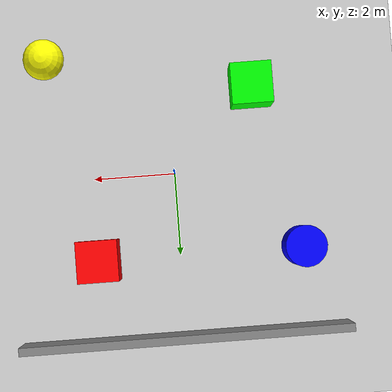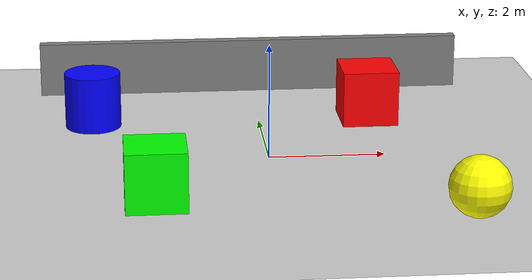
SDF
<?xml version="1.0"?>
<sdf version="1.6">
  <world name="simple_world">
    <!-- 添加光源 -->
    <include>
      <uri>model://sun</uri>
    </include>

    <!-- 添加地面 -->
    <include>
      <uri>model://ground_plane</uri>
    </include>

    <!-- 物理引擎设置 -->
    <physics type="ode">
      <max_step_size>0.001</max_step_size>
      <real_time_factor>1.0</real_time_factor>
      <real_time_update_rate>1000</real_time_update_rate>
    </physics>

    <!-- 添加一些障碍物 -->
    <model name="box1">
      <pose>2 2 0.5 0 0 0</pose>
      <link name="link">
        <collision name="collision">
          <geometry>
            <box>
              <size>1 1 1</size>
            </box>
          </geometry>
        </collision>
        <visual name="visual">
          <geometry>
            <box>
              <size>1 1 1</size>
            </box>
          </geometry>
          <material>
            <ambient>1 0 0 1</ambient>
            <diffuse>1 0 0 1</diffuse>
          </material>
        </visual>
      </link>
      <static>true</static>
    </model>

    <model name="box2">
      <pose>-2 -2 0.5 0 0 0</pose>
      <link name="link">
        <collision name="collision">
          <geometry>
            <box>
              <size>1 1 1</size>
            </box>
          </geometry>
        </collision>
        <visual name="visual">
          <geometry>
            <box>
              <size>1 1 1</size>
            </box>
          </geometry>
          <material>
            <ambient>0 1 0 1</ambient>
            <diffuse>0 1 0 1</diffuse>
          </material>
        </visual>
      </link>
      <static>true</static>
    </model>

    <model name="cylinder1">
      <pose>-3 2 0.5 0 0 0</pose>
      <link name="link">
        <collision name="collision">
          <geometry>
            <cylinder>
              <radius>0.5</radius>
              <length>1</length>
            </cylinder>
          </geometry>
        </collision>
        <visual name="visual">
          <geometry>
            <cylinder>
              <radius>0.5</radius>
              <length>1</length>
            </cylinder>
          </geometry>
          <material>
            <ambient>0 0 1 1</ambient>
            <diffuse>0 0 1 1</diffuse>
          </material>
        </visual>
      </link>
      <static>true</static>
    </model>

    <model name="sphere1">
      <pose>3 -3 0.5 0 0 0</pose>
      <link name="link">
        <collision name="collision">
          <geometry>
            <sphere>
              <radius>0.5</radius>
            </sphere>
          </geometry>
        </collision>
        <visual name="visual">
          <geometry>
            <sphere>
              <radius>0.5</radius>
            </sphere>
          </geometry>
          <material>
            <ambient>1 1 0 1</ambient>
            <diffuse>1 1 0 1</diffuse>
          </material>
        </visual>
      </link>
      <static>true</static>
    </model>

    <!-- 添加一面墙 -->
    <model name="wall">
      <pose>0 4 0.5 0 0 0</pose>
      <link name="link">
        <collision name="collision">
          <geometry>
            <box>
              <size>8 0.2 1</size>
            </box>
          </geometry>
        </collision>
        <visual name="visual">
          <geometry>
            <box>
              <size>8 0.2 1</size>
            </box>
          </geometry>
          <material>
            <ambient>0.5 0.5 0.5 1</ambient>
            <diffuse>0.5 0.5 0.5 1</diffuse>
          </material>
        </visual>
      </link>
      <static>true</static>
    </model>
  </world>
</sdf>
